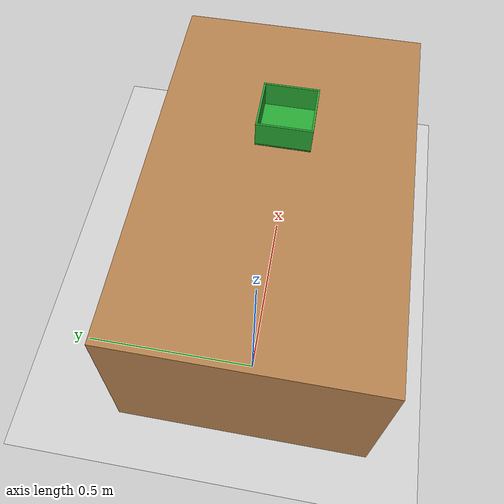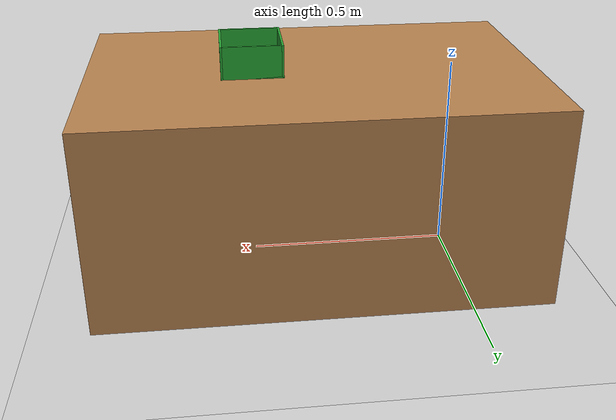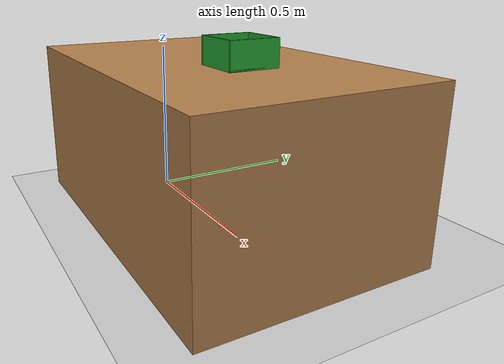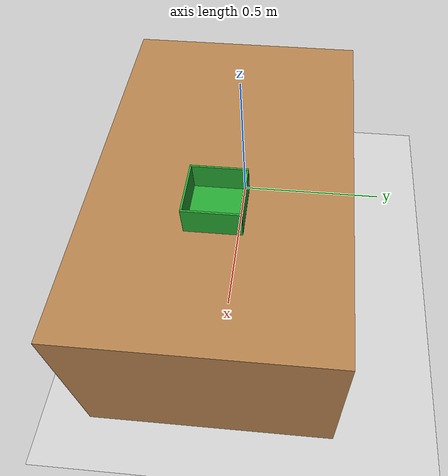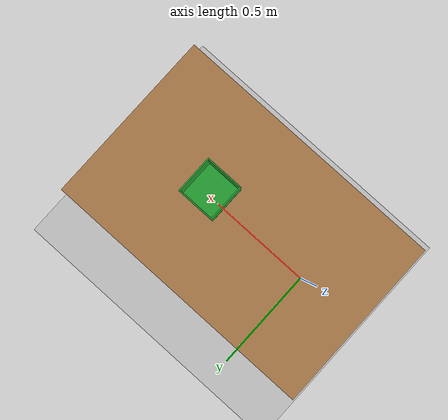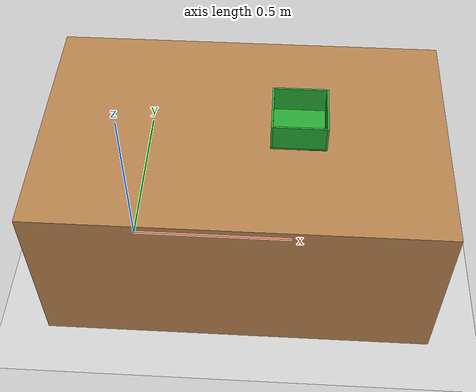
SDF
<?xml version="1.0" ?>
<sdf version="1.5">
  <world name="ur3_world">

    <scene>
      <ambient>0.8 0.8 0.8 1.0</ambient>
      <background>0.9 0.9 0.9 1.0</background>
      <shadows>true</shadows>
    </scene>

    <!-- Ánh sáng và Mặt đất mặc định -->
    <include>
      <uri>model://sun</uri>
    </include>
    <include>
      <uri>model://ground_plane</uri>
    </include>

    <!-- 1. BÀN LÀM VIỆC (Kích thước 1.1 x 0.7 x 0.5) -->
    <model name="work_table">
      <static>true</static>
      <pose>0.35 0.0 0.25 0 0 0</pose>
      <link name="link">
        <collision name="collision">
          <geometry>
            <box><size>1.1 0.7 0.5</size></box>
          </geometry>
        </collision>
        <visual name="visual">
          <geometry>
            <box><size>1.1 0.7 0.5</size></box>
          </geometry>
          <material>
            <script>
              <uri>file://media/materials/scripts/gazebo.material</uri>
              <name>Gazebo/Wood</name>
            </script>
          </material>
        </visual>
      </link>
    </model>

    <!-- 2. CAMERA 3D GIẢ LẬP (Vật cản cần né) -->

    <!-- 3. HỘP CHỨA (Drop Bin) - Kích thước 0.15 x 0.15 x 0.1 -->
    <model name="drop_bin">
      <static>true</static>
      <!-- Tâm điểm của hộp -->
      <pose>0.5 0.0 0.50025 0 0 0</pose>

      <!-- Đáy hộp -->
      <link name="bin_base">
        <pose>0 0 0.005 0 0 0</pose>
        <collision name="col"><geometry><box><size>0.15 0.15 0.005</size></box></geometry></collision>
        <visual name="vis"><geometry><box><size>0.15 0.15 0.005</size></box></geometry><material><script><name>Gazebo/Green</name></script></material></visual>
      </link>

      <!-- Thành trước -->
      <link name="bin_front">
        <pose>0.0725 0 0.0425 0 0 0</pose>
        <collision name="col"><geometry><box><size>0.005 0.15 0.08</size></box></geometry></collision>
        <visual name="vis"><geometry><box><size>0.005 0.15 0.08</size></box></geometry><material><script><name>Gazebo/Green</name></script></material></visual>
      </link>

      <!-- Thành sau -->
      <link name="bin_back">
        <pose>-0.0725 0 0.0425 0 0 0</pose>
        <collision name="col"><geometry><box><size>0.005 0.15 0.08</size></box></geometry></collision>
        <visual name="vis"><geometry><box><size>0.005 0.15 0.08</size></box></geometry><material><script><name>Gazebo/Green</name></script></material></visual>
      </link>

      <!-- Thành trái -->
      <link name="bin_left">
        <pose>0 0.0725 0.0425 0 0 0</pose>
        <collision name="col"><geometry><box><size>0.14 0.005 0.08</size></box></geometry></collision>
        <visual name="vis"><geometry><box><size>0.14 0.005 0.08</size></box></geometry><material><script><name>Gazebo/Green</name></script></material></visual>
      </link>

      <!-- Thành phải -->
      <link name="bin_right">
        <pose>0 -0.0725 0.0425 0 0 0</pose>
        <collision name="col"><geometry><box><size>0.14 0.005 0.08</size></box></geometry></collision>
        <visual name="vis"><geometry><box><size>0.14 0.005 0.08</size></box></geometry><material><script><name>Gazebo/Green</name></script></material></visual>
      </link>
    </model>

  </world>
</sdf>
